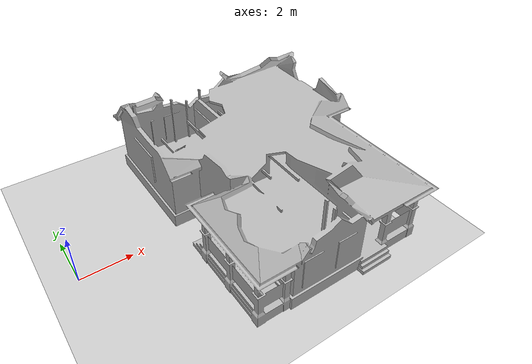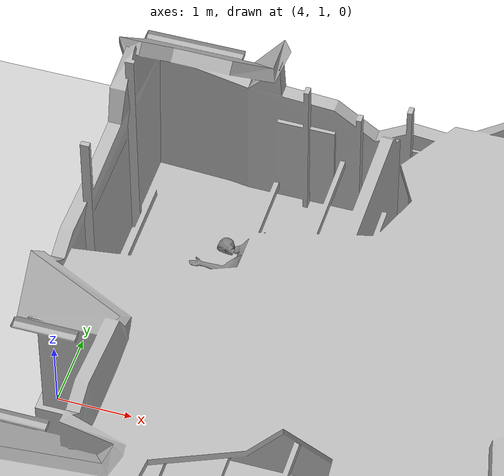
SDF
<?xml version="1.0" ?>
<sdf version='1.4'>
  <world name='default'>

    <physics name='default_physics' default='0' type='ode'>
      <gravity>0 0 -9.8066</gravity>
      <ode>
        <solver>
          <type>quick</type>
          <iters>10</iters>
          <sor>1.3</sor>
          <use_dynamic_moi_rescaling>0</use_dynamic_moi_rescaling>
        </solver>
        <constraints>
          <cfm>0</cfm>
          <erp>0.2</erp>
          <contact_max_correcting_vel>100</contact_max_correcting_vel>
          <contact_surface_layer>0.001</contact_surface_layer>
        </constraints>
      </ode>
      <max_step_size>0.004</max_step_size>
      <real_time_factor>1</real_time_factor>
      <real_time_update_rate>250</real_time_update_rate>
      <magnetic_field>6.0e-6 2.3e-5 -4.2e-5</magnetic_field>
    </physics>

    <spherical_coordinates>
      <surface_model>EARTH_WGS84</surface_model>
      <latitude_deg>0</latitude_deg>
      <longitude_deg>0</longitude_deg>
      <elevation>0</elevation>
      <heading_deg>0</heading_deg>
    </spherical_coordinates>

    <!-- A global light source -->
   <scene>
      <sky>
        <clouds>
          <speed>12</speed>
        </clouds>
      </sky>
   </scene>

    <include>
      <uri>model://sun</uri>
    </include>

<!-- AR tag-->

  <include>
      <pose>0 0 0 0 0 0</pose>
      <uri>model://ground_plane</uri>
   </include>

<model name="collapsed_house">
    <static>true</static>
    <pose>0 0 0 0 0 0</pose>
    <link name="body">
   <visual name="visual">
  <pose>8 0 0 0 0 -1.57</pose>
        <geometry>
          <mesh>
            <uri>model://collapsed_house/meshes/collapsed_house.dae</uri>
          </mesh>
        </geometry>
        <cast_shadows>true</cast_shadows>
      </visual>
  <collision name="collision">
    <pose>8 0 0 0 0 -1.57</pose>
       <geometry>
          <mesh>
            <uri>model://collapsed_house/meshes/collapsed_house.dae</uri>
          </mesh>
        </geometry>
      </collision>
    </link>
  </model>

<!-- ramp attached to the house -->

<model name="human">
    <static>true</static>
   <pose>5.4 3.5 0.8 0 3.14 -1.57</pose>
    <link name="body">
   <visual name="visual">
        <geometry>
          <mesh>
            <uri>model://human_resting_description/meshes/man_resting.dae</uri>
          </mesh>
        </geometry>
        <cast_shadows>true</cast_shadows>
      </visual>
  <collision name="collision">
       <geometry>
          <mesh>
            <uri>model://human_resting_description/meshes/man_resting.dae</uri>
          </mesh>
        </geometry>
      </collision>
    </link>
  </model>

<!-- camera mode for following the uav-->
<!-- choose the name of the model - iris_camera, iris_0, iris_1-->

  </world>
</sdf>
